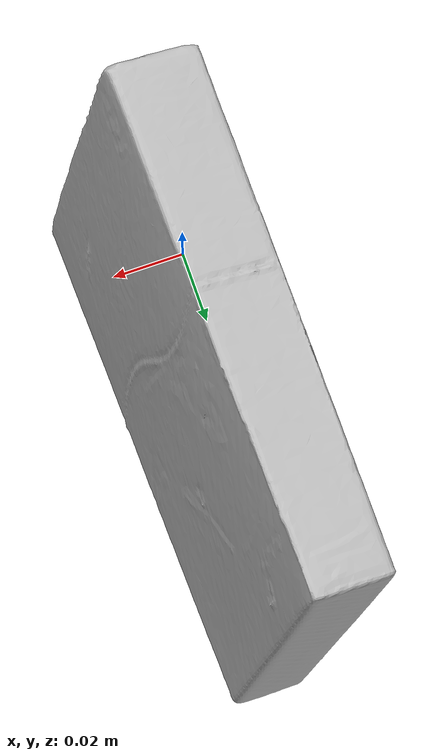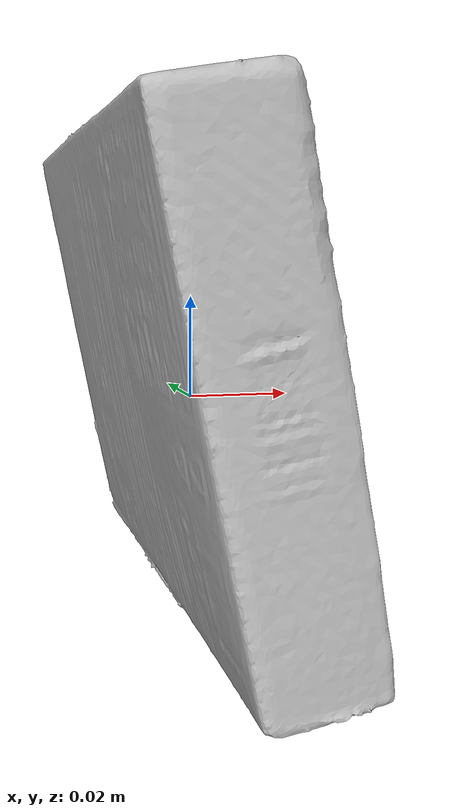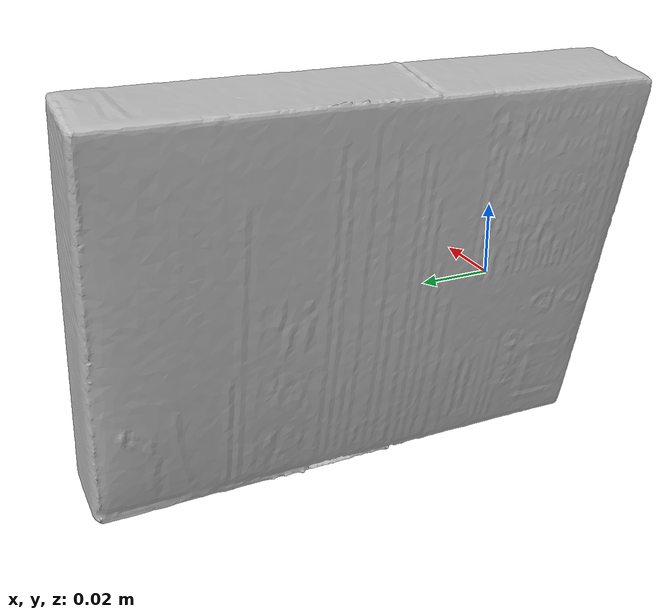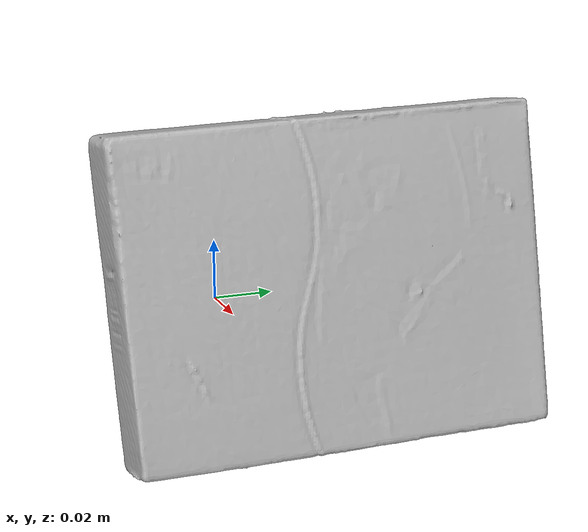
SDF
<?xml version='1.0'?>
<sdf version="1.4">
  <model name="InstantMousse">
    <static>false</static>
    <link name="link">
      <inertial>
        <pose>0.004550910864114584 0.03710081049408401 0.0031228984162853376 1.571570186471586 0.19367537743403423 -3.1230658178798882</pose>
        <mass>0.04428899102380882</mass>
        <inertia>
          <ixx>0.00012896098085775665</ixx>
          <ixy>1.6124392570818837e-21</ixy>
          <ixz>-6.2923461424779416e-21</ixz>
          <iyy>8.498307920757466e-05</iyy>
          <iyz>1.5363746566337104e-20</iyz>
          <izz>4.892211986967649e-05</izz>
        </inertia>
      </inertial>
      <collision name="collision">
        <geometry>
          <mesh>
            <!-- Use a downsampled mesh for collisions -->
            <uri>model:///InstantMousse/InstantMousse_250_collision.obj</uri>
	        </mesh>
        </geometry>
        <surface>
      </surface>
      </collision>
      <visual name="visual">
        <geometry>
          <mesh>
            <uri>model:///InstantMousse/InstantMousse_25k_tex.obj</uri>
	        </mesh>
        </geometry>
        <material>
          <script>
            <uri>model:///InstantMousse/InstantMousse.material</uri>
            <name>InstantMousse</name>
          </script>
        </material>
      </visual>
    </link>
  </model>
</sdf>
